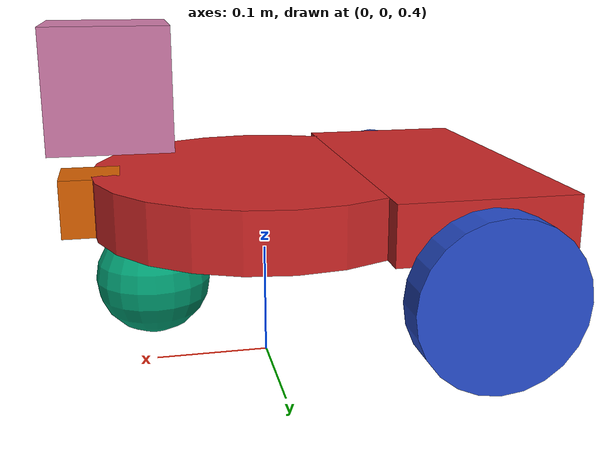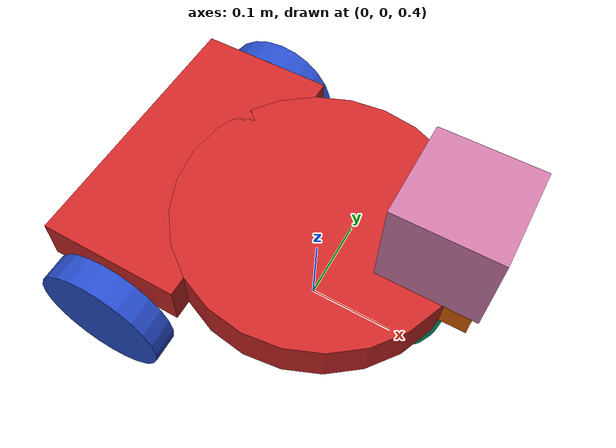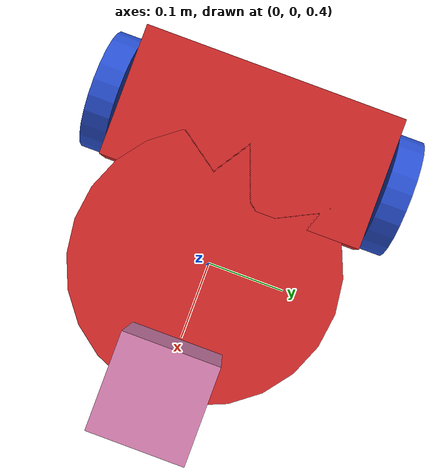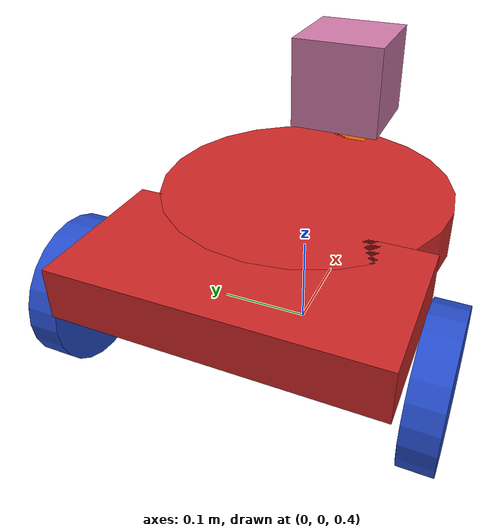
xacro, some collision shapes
<?xml version='1.0'?>

<robot name="my_robot" xmlns:xacro="http://www.ros.org/wiki/xacro">

<!-- Plugin Add -->
<xacro:include filename="$(find my_robot)/urdf/my_robot.gazebo" />

  <link name="robot_footprint"></link>

  <joint name="robot_footprint_joint" type="fixed">
    <origin xyz="0 0 0.55" rpy="0 0 0" />
    <parent link="robot_footprint"/>
    <child link="chassis" />
  </joint>

  <link name='chassis'>
    <pose>0 0 0.1 0 0 0</pose>

    <inertial>
      <mass value="6.0"/>
      <origin xyz="0.0 0 0" rpy=" 0 0 0"/>
      <inertia
          ixx="0.1" ixy="0" ixz="0"
          iyy="1" iyz="0"
          izz="0.1"
      />
    </inertial>

    <collision name='collision'>
      <origin xyz="0 0 0" rpy=" 0 0 0"/>
      <geometry>
        <cylinder radius=".15" length=".05"/>
      </geometry>
    </collision>

    <visual name='chassis_visual'>
      <origin xyz="0 0 0" rpy=" 0 0 0"/>
      <geometry>
        <cylinder radius=".15" length=".05"/>
      </geometry>
    </visual>

</link>

<!-- caster bal link -->
  <link name="caster_link">
   <visual>
    <origin xyz="0.0 0 0" rpy=" 0 0 0"/>
    <geometry>
      <sphere radius="0.05"/>
    </geometry>
   </visual>
   <collision>
    <origin xyz="0.0 0 0" rpy=" 0 1.5707 1.5707"/>
     <geometry>
      <sphere radius="0.05"/>
     </geometry>
  </collision>
  <inertial>
    <mass value="0.5"/>

    <inertia ixx="0.1" ixy="0.0" ixz="0.0" iyy="0.1" iyz="0.0" izz="0.1"/>
   </inertial>

  </link>
<!-- caster joint -->
  <joint type="continuous" name="caster_joint">
    <origin xyz="0.1 0 -0.07" rpy="0 0 0"/>
    <child link="caster_link"/>
    <parent link="chassis"/>
    <axis xyz="0 1 0" rpy="0 0 0"/>
    <limit effort="10000" velocity="1000"/>
    <dynamics damping="1.0" friction="1.0"/>
  </joint>

<!-- right wheel link -->
  <link name="right_wheel">
   <visual>
    <origin xyz="0.0 0 0" rpy=" 0 1.5707 1.5707"/>
    <geometry>
      <cylinder length="0.03" radius="0.07"/>
    </geometry>
   </visual>
   <collision>
    <origin xyz="0.0 0 0" rpy=" 0 1.5707 1.5707"/>
     <geometry>
      <cylinder length="0.03" radius="0.07"/>
     </geometry>
  </collision>
  <inertial>
    <mass value="0.5"/>

    <inertia ixx="0.1" ixy="0.0" ixz="0.0" iyy="0.1" iyz="0.0" izz="0.1"/>
   </inertial>
  </link>
<!-- right wheel joint -->
  <joint type="continuous" name="right_wheel_hinge">
    <origin xyz="0 -0.17 -0.05" rpy="0 0 0"/>
    <child link="right_wheel"/>
    <parent link="box_chassis"/>
    <axis xyz="0 1 0" rpy="0 0 0"/>
    <limit effort="10000" velocity="1000"/>
    <dynamics damping="1.0" friction="1.0"/>
  </joint>
<!-- left wheel link -->
  <link name="left_wheel">
   <visual>
    <origin xyz="0.0 0 0" rpy=" 0 1.5707 1.5707"/>
    <geometry>
      <cylinder length="0.03" radius="0.07"/>
    </geometry>
   </visual>
   <collision>
    <origin xyz="0.0 0 0" rpy=" 0 1.5707 1.5707"/>
     <geometry>
      <cylinder length="0.03" radius="0.07"/>
     </geometry>
  </collision>
  <inertial>
    <mass value="0.5"/>
    <inertia ixx="0.1" ixy="0.0" ixz="0.0" iyy="0.1" iyz="0.0" izz="0.1"/>
   </inertial>
  </link>
<!-- left wheel joint -->
  <joint type="continuous" name="left_wheel_hinge">
    <origin xyz="0 0.17 -.05" rpy="0 0 0"/>
    <child link="left_wheel"/>
    <parent link="box_chassis"/>
    <axis xyz="0 1 0" rpy="0 0 0"/>
    <limit effort="10000" velocity="1000"/>
    <dynamics damping="1.0" friction="1.0"/>
  </joint>

<!-- camera link-->
  <link name="camera_link">
   <visual>
    <origin xyz="0.0 0 0" rpy=" 0 0 0"/>
    <geometry>
      <box size=".05 .05 .05"/>
    </geometry>
   </visual>
   <collision>
    <origin xyz="0.0 0 0" rpy=" 0 0 0"/>
     <geometry>
      <box size=".05 .05 .05"/>
     </geometry>
  </collision>
  <inertial>
    <mass value="0.1"/>

    <inertia ixx="1e-6" ixy="0.0" ixz="0.0" iyy="1e-6" iyz="0.0" izz="1e-6"/>
   </inertial>
  </link>
<!-- camera joint -->
  <joint type="fixed" name="camera_joint">
    <origin xyz="0.15 0 0" rpy="0 0 0"/>
    <child link="camera_link"/>
    <parent link="chassis"/>
    <axis xyz="0 1 0"/>
  </joint>
<!-- lidar link-->
  <link name="hokuyo">
   <visual>
    <origin xyz="0.0 0 0" rpy=" 0 0 0"/>
    <geometry>
      <mesh filename="package://my_robot/meshes/hokuyo.dae"/>
    </geometry>
   </visual>
   <collision>
    <origin xyz="0.0 0 0" rpy=" 0 0 0"/>
     <geometry>
      <box size=".1 .1 .1"/>
     </geometry>
  </collision>
  <inertial>
    <mass value="1e-5"/>
    <inertia ixx="1e-6" ixy="0.0" ixz="0.0" iyy="1e-6" iyz="0.0" izz="1e-6"/>
   </inertial>
  </link>
<!-- lidar joint -->
  <joint type="fixed" name="hokuyo_joint">
    <origin xyz="0.13 0 0.1" rpy="0 0 0"/>
    <child link="hokuyo"/>
    <parent link="chassis"/>
    <axis xyz="0 1 0"/>
  </joint>

<!-- box link-->
  <link name="box_chassis">
   <visual>
    <origin xyz="0.0 0 0" rpy=" 0 0 0"/>
    <geometry>
      <box size=".15 .30 .05"/>
    </geometry>
   </visual>
   <collision>
    <origin xyz="0.0 0 0" rpy=" 0 0 0"/>
     <geometry>
      <box size=".15 .30 .05"/>
     </geometry>
  </collision>
  <inertial>
    <mass value="5"/>

    <inertia ixx="0.1" ixy="0.0" ixz="0.0" iyy="0.1" iyz="0.0" izz="0.1"/>
   </inertial>
  </link>
<!-- box joint -->
  <joint type="fixed" name="box_chassis_joint">
    <origin xyz="-0.15 0 0" rpy="0 0 0"/>
    <child link="box_chassis"/>
    <parent link="chassis"/>
    <axis xyz="0 0 0"/>
  </joint>
<!-- Optical camera -->
  <joint name="camera_optical_joint" type="fixed">
    <origin xyz="0 0 0" rpy="-1.5707 0 -1.5707"/>
    <parent link="camera_link"/>
    <child link="camera_link_optical"/>
  </joint>

  <link name="camera_link_optical">
  </link>

<!-- Color -->
  <gazebo reference="left_wheel">
    <material>Gazebo/Blue</material>
  </gazebo>

  <gazebo reference="right_wheel">
    <material>Gazebo/Blue</material>
  </gazebo>

  <gazebo reference="chassis">
    <material>Gazebo/Red</material>
  </gazebo>

  <gazebo reference="camera">
    <material>Gazebo/Yellow</material>
  </gazebo>

  <gazebo reference="box_chassis">
   <material>Gazebo/Red</material>
  </gazebo>

</robot>
